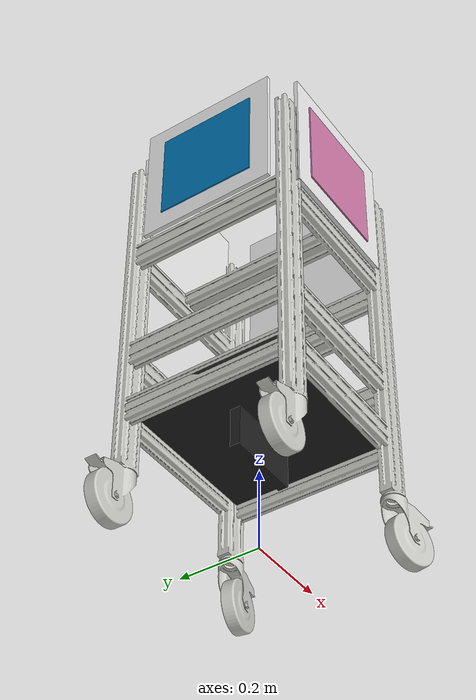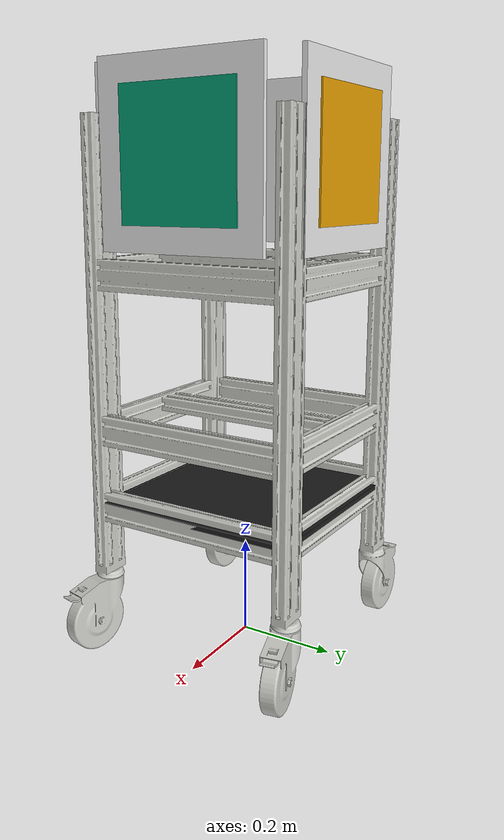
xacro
<?xml version="1.0" ?>
<robot name="$(arg robotName)" xmlns:xacro="http://ros.org/wiki/xacro">

<!-- #### constants #### -->
<xacro:property name="deg_to_rad" value="0.017453"/>
<xacro:property name="PI" value="3.14"/>

<xacro:macro name="cylinder_inertia" params ="m r h">
    <inertial>
        <mass value="${m}"/>
        <inertia ixx="${m*(3*r*r+h*h)/12}" ixy="0.0" ixz="0.0"
                 iyy="${m*(3*r*r+h*h)/12}" iyz= "0.0"
                 izz="${m*r*r/2}"/>
     </inertial>
 </xacro:macro>

<xacro:macro name="cuboid_inertia" params ="m w l h">
    <inertial>
        <mass value="${m}"/>
        <inertia ixx="${m*(w*w+h*h)/12}" ixy="0.0" ixz="0.0"
                 iyy="${m*(l*l+h*h)/12}" iyz= "0.0"
                 izz="${m*(w*w+l*l)/12}"/>
     </inertial>
 </xacro:macro>

<!-- #### body property #### -->
<xacro:property name="body_length" value=".45"/>
<xacro:property name="body_width" value=".45"/>
<xacro:property name="body_height" value=".45"/>

<!-- ####  leg property #### -->
<xacro:property name="leg_radius" value="0.025"/>
<xacro:property name="leg_length" value="0.32"/>
<xacro:property name="leg_mass" value="1"/>

<!-- #####  leg macro  ##### -->
<xacro:macro name="leg" params= "prefix suffix X1 Y1">

  <joint name="${prefix}_${suffix}_leg_joint" type="fixed">
    <parent link= "body"/>
    <child link= "${prefix}_${suffix}_leg"/>
    <origin xyz= "${(body_length/2)*X1} ${(body_width/2)*Y1}  ${leg_length/2}" rpy="0 0 0"/>
    <dynamics damping="0.0" friction="0.0"/>
  </joint>

  <link name= "${prefix}_${suffix}_leg">
    <collision>
      <origin rpy= "0 0 0" xyz= "0 0 0"/>
      <geometry>
        <cylinder length="${leg_length}" radius= "${leg_radius}"/>
      </geometry>
    </collision>
    <xacro:cylinder_inertia m="${leg_mass}" r="${leg_radius}" h="${leg_length}"/>
  </link>

  <gazebo reference ="${prefix}_${suffix}_leg">
    <mu1 value=".005"/>
    <mu2 value=".005"/>
    <kp value="10000000.0"/>
    <kd value= "10.0"/>
    <maxVel>0.</maxVel>
    <minDepth>0.001</minDepth>
  </gazebo>

</xacro:macro>

<!-- ####  Aruco property #### -->
<xacro:property name="aruco_width" value="0.25"/>
<xacro:property name="aruco_length" value="0.25"/>
<xacro:property name="aruco_height" value="0.01"/>
<xacro:property name="aruco_z" value="1."/>
<xacro:property name="aruco_mass" value="1"/>
<xacro:property name="edge_width" value="0.1"/>

<!-- #####  Aruco macro  ##### -->
    <!-- Aruco facing four directions-->
<xacro:macro name="aruco" params= "prefix X1 Y1 Yaw">
  <joint name="${prefix}_joint" type="fixed">
    <parent link= "body"/>
    <child link= "${prefix}_aruco"/>
    <origin xyz= "${(body_length/2)*X1} ${(body_width/2)*Y1} ${aruco_z}" rpy="${PI/2} 0 ${Yaw*PI/2}"/>
    <dynamics damping="0.0" friction="0.0"/>
  </joint>

  <link name= "${prefix}_aruco">
    <visual>
      <origin rpy= "0 0 0" xyz= "0 0 0"/>
      <geometry>
          <box size="${aruco_length} ${aruco_width} ${aruco_height}"/>
      </geometry>
    </visual>
    <collision>
      <origin rpy= "0 0 0" xyz= "0 0 0"/>
      <geometry>
          <box size="${aruco_length} ${aruco_width} ${aruco_height}"/>
      </geometry>
    </collision>
    <xacro:cuboid_inertia m="${aruco_mass}" w="${aruco_width}" l="${aruco_length}" h="${aruco_height}"/>
  </link>

  <gazebo reference="${prefix}_aruco">
      <material>SOLab/aruco0</material>
  </gazebo>

    <!-- Back Board for white edges -->
  <joint name="${prefix}_whiteboarder_joint" type="fixed">
    <parent link= "body"/>
    <child link= "${prefix}_aruco_whiteboarder"/>
    <origin xyz= "${(body_length/2-aruco_height*1/3)*X1} ${(body_width/2-aruco_height*1/3)*Y1} ${aruco_z}" rpy="${PI/2} 0 ${Yaw*PI/2}"/>
    <dynamics damping="0.0" friction="0.0"/>
  </joint>

  <link name= "${prefix}_aruco_whiteboarder">
    <visual>
      <origin rpy= "0 0 0" xyz= "0 0 0"/>
      <geometry>
          <box size="${aruco_length+edge_width} ${aruco_width+edge_width} ${aruco_height}"/>
      </geometry>
    </visual>
    <collision>
      <origin rpy= "0 0 0" xyz= "0 0 0"/>
      <geometry>
          <box size="${aruco_length+edge_width} ${aruco_width+edge_width} ${aruco_height}"/>
      </geometry>
    </collision>
    <xacro:cuboid_inertia m="${aruco_mass}" w="${aruco_width+edge_width}" l="${aruco_length+edge_width}" h="${aruco_height}"/>
  </link>
  <gazebo reference="${prefix}_aruco_whiteboarder">
      <material>SOLab/WhiteGlow</material>
  </gazebo>

</xacro:macro>

  <!-- body-->
  <link name="body">
    <visual>
      <origin rpy="0 0 0" xyz="0 0 0"/>
      <geometry>
        <mesh filename="package://amr_description/meshes/only_shelf.stl" scale="0.01 0.01 0.01"/>
      </geometry>
    </visual>

    <collision>
       <origin rpy="0 0 0" xyz="0 0 ${leg_length + body_height/2}"/>
       <geometry>
        <box size="${body_length} ${body_width} ${body_height}"/>
       </geometry>
     </collision>
     <inertial>
         <mass value="1.0"/>
              <inertia ixx="1.3542" ixy="0.0"
                       iyy="1.3542" iyz="0.0"
                       izz="1.3542" ixz="0.0"/>
    </inertial>
   </link>

  <gazebo reference="body">
      <material>Gazebo/CeilingTiled</material>
  </gazebo>

<!-- #### 4 legs #### -->
  <xacro:leg prefix="right" suffix="front" X1="1" Y1="-1"/>
  <xacro:leg prefix="right" suffix="back" X1="-1" Y1="-1"/>
  <xacro:leg prefix="left" suffix="front" X1="1" Y1="1"/>
  <xacro:leg prefix="left" suffix="back" X1="-1" Y1="1"/>

<!-- #### B bottom #### -->
  <joint name="B_bot_joint" type="fixed">
    <parent link="body"/>
    <child link="B_bot" />
    <origin xyz="0 0 ${leg_length} " rpy="0 0 0"/>
  </joint>

  <link name="B_bot">
    <visual>
      <origin xyz="0.0 0 0.0" rpy="${PI} 0 ${PI/2}"/>
      <geometry>
        <mesh filename="package://amr_description/meshes/B_bot_shrink10mm.stl" scale="0.01 0.01 0.01"/>
      </geometry>
      <material name="light_black"/>
    </visual>

    <collision>
      <max_contacts>1</max_contacts>
      <origin xyz="0.0 0 0.0" rpy="${PI} 0 ${PI/2}"/>
      <geometry>
        <mesh filename="package://amr_description/meshes/B_bot_shrink10mm.stl" scale="0.01 0.01 0.01"/>
      </geometry>
    </collision>

    <inertial>
      <origin xyz="0 0 0" rpy="0 0 0"/>
      <mass value="1.5"/>
      <inertia ixx="2.15625e-02" ixy="0" ixz="0"
               iyy="2.15625e-02" iyz="0"
               izz="2.25e-02" />
    </inertial>
  </link>

  <!-- Aruco spawn -->
  <xacro:aruco prefix="east" X1="0" Y1="-1" Yaw="0" />
  <xacro:aruco prefix="west" X1="0" Y1="1" Yaw="0" />
  <xacro:aruco prefix="north" X1="1" Y1="0" Yaw="1" />
  <xacro:aruco prefix="south" X1="-1" Y1="0" Yaw="1" />

  <gazebo reference="B_bot">
      <mu1>0</mu1>
      <mu2>0</mu2>
      <kp>1000000</kp>
      <kd>10</kd>
      <maxVel>0.</maxVel>
      <minDepth>0.001</minDepth>
      <material>Gazebo/Wood</material>
  </gazebo>

</robot>
